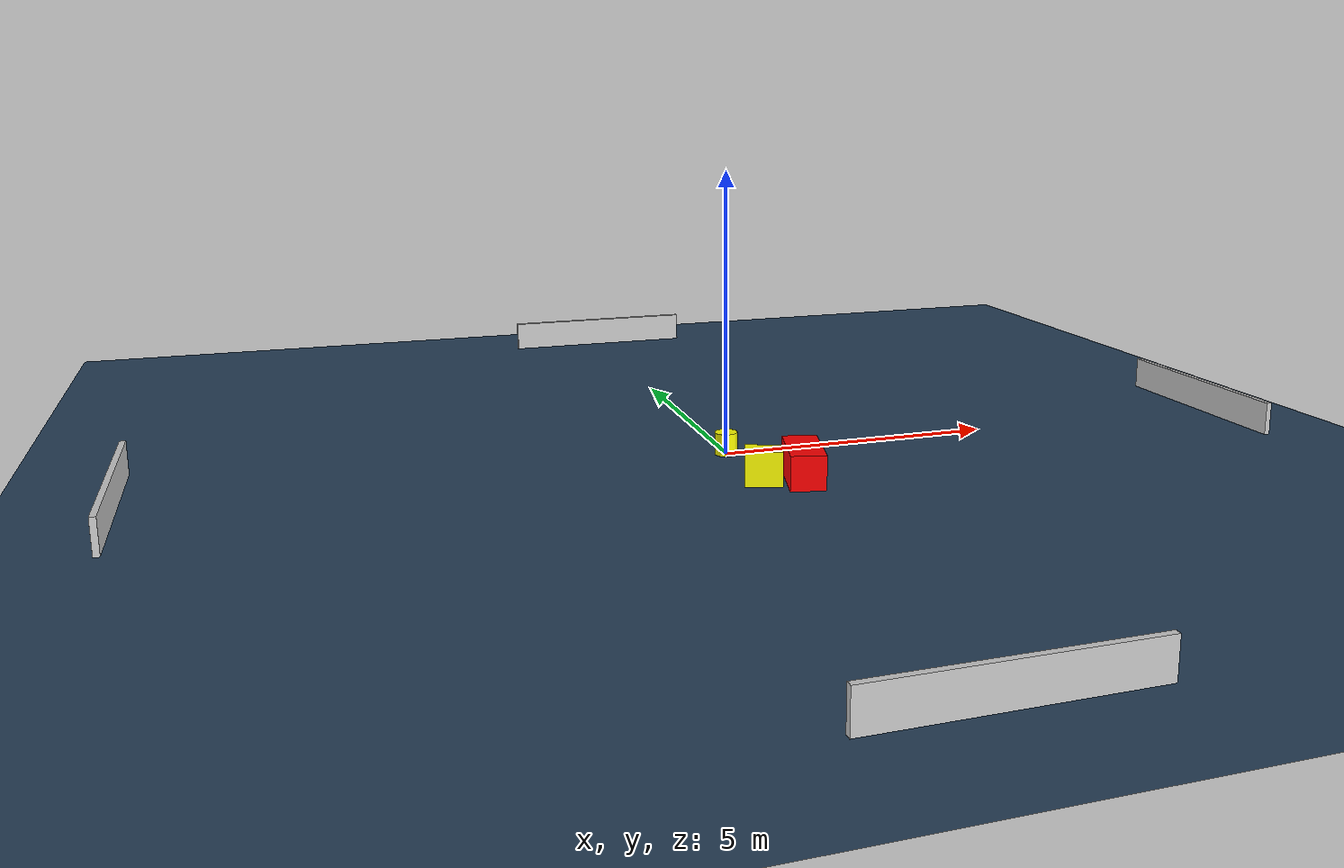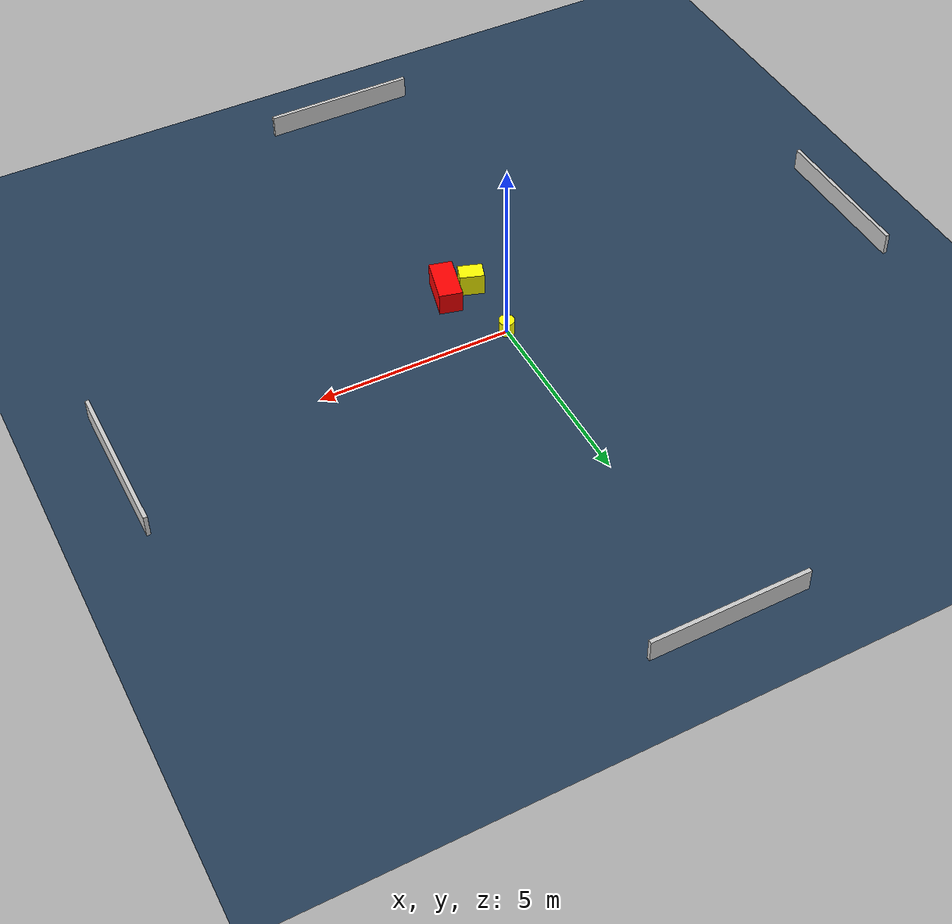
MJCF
<?xml version="1.0" ?>
<mujoco model="generated_environment">
  <option timestep="0.01" integrator="RK4" cone="elliptic"/>
  <default>
    <geom density="1"/>
  </default>
  <asset>
    <texture builtin="gradient" height="3072" name="skybox" rgb1="0.3 0.5 0.7" rgb2="0 0 0" type="skybox" width="512"/>
    <texture builtin="checker" height="300" name="groundplane" rgb1="0.2 0.3 0.4" rgb2="0.1 0.2 0.3" type="2d" width="300"/>
    <material name="groundplane" reflectance="0.2" texrepeat="5 5" texture="groundplane"/>
  </asset>
  <worldbody>
    <light dir="0 0 -1" directional="true" pos="0 0 1.5"/>
    <geom condim="3" friction="0.5 0.005 0.001" material="groundplane" name="floor" pos="0 0 0" size="0 0 0.05" type="plane"/>
    <body name="walls">
      <geom name="wall_1" condim="4" pos="-10.0 0.0 0.3" rgba="0.800000011920929 0.800000011920929 0.800000011920929 1.0" size="0.05 2.0 0.3" type="box"/>
      <geom name="wall_2" condim="4" pos="10.0 0.0 0.3" rgba="0.800000011920929 0.800000011920929 0.800000011920929 1.0" size="0.05 2.0 0.3" type="box"/>
      <geom name="wall_3" condim="4" pos="0.0 -10.0 0.3" rgba="0.800000011920929 0.800000011920929 0.800000011920929 1.0" size="2.0 0.05 0.3" type="box"/>
      <geom name="wall_4" condim="4" pos="0.0 10.0 0.3" rgba="0.800000011920929 0.800000011920929 0.800000011920929 1.0" size="2.0 0.05 0.3" type="box"/>
    </body>
    <body name="robot">
      <joint name="joint_x" type="slide" pos="0 0 0" axis="1 0 0"/>
      <joint name="joint_y" type="slide" pos="0 0 0" axis="0 1 0"/>
      <geom name="robot" type="cylinder" pos="0.0 0.0 0.2" size="0.2 0.2 0.0" mass="5.0" friction="1.0 0.005 0.0001" condim="4" rgba="1.0 1.0 0.0 1.0"/>
    </body>
    <body name="obstacle_1_movable">
      <geom name="obstacle_1_movable" condim="4" pos="0.056512897681491384 -1.8155825702913766 0.3" euler="0 0 160.92055126983377" friction="0.0 0.005 0.001" rgba="1.0 1.0 0.0 1.0" size="0.3157919376237202 0.22549832628754218 0.3" type="box" mass="0.1"/>
      <joint type="free"/>
    </body>
    <body name="obstacle_2_static">
      <geom name="obstacle_2_static" condim="4" pos="0.7449992848834304 -1.8534228491316493 0.3" euler="0 0 76.13572599960736" friction="0.0 0.005 0.001" rgba="1.0 0.0 0.0 1.0" size="0.6047953391824521 0.29993818013127377 0.3" type="box"/>
    </body>
  </worldbody>
  <actuator>
    <motor name="actuator_x" joint="joint_x" gear="1" ctrlrange="-1 1"/>
    <motor name="actuator_y" joint="joint_y" gear="1" ctrlrange="-1 1"/>
  </actuator>
</mujoco>
